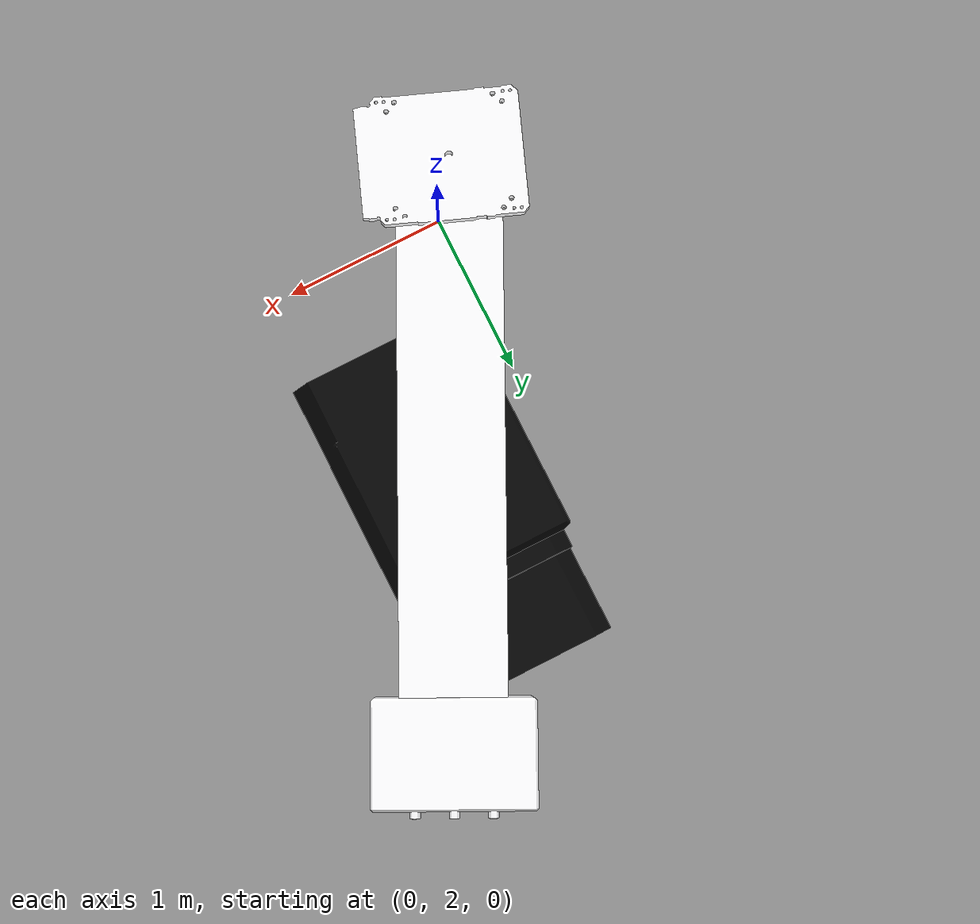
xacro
<?xml version="1.0"?>
<robot xmlns:xacro="http://www.ros.org/wiki/xacro">

  <link name="slider_link">
    <inertial>
      <origin
        xyz="0.75 1.0487 -3.6486"  rpy="0 0 0" />
      <mass value="1317.8" />
      <inertia ixx="353.39"  ixy="3.9338E-12"  ixz="3.5103E-13"
               iyy="420.06"  iyz="4.9967E-13"
               izz="170.54" />
      </inertial>
    <visual>
      <origin  xyz="0 0 0"     rpy="0 0 0" />
      <geometry>
        <mesh     filename="package://robot_slider_description/meshes/slider_link.STL" />
      </geometry>
      <material  name="">
        <color   rgba="0.019608 0.019608 0.019608 1" />
      </material>
    </visual>
    <collision>
      <origin  xyz="0 0 0"   rpy="0 0 0" />
      <geometry>
        <mesh   filename="package://robot_slider_description/meshes/slider_link.STL" />
      </geometry>
    </collision>
  </link>

  <link name="robot_stand">
    <inertial>
      <origin    xyz="0.0029912 -0.083551 0.56051"   rpy="0 0 0" />
      <mass value="300.98" />
      <inertia  ixx="65.942" ixy="-0.0012689" ixz="-0.044489"
                iyy="74.027" iyz="-0.19476"
                izz="15.95" />
      </inertial>
    <visual>
      <origin  xyz="0 0 0"  rpy="0 0 0" />
      <geometry>
        <mesh  filename="package://robot_slider_description/meshes/robot_stand.STL" />
      </geometry>
      <material name="">
        <color  rgba="0.99608 0.99608 1 1" />
      </material>
    </visual>
    <collision>
      <origin xyz="0 0 0"  rpy="0 0 0" />
      <geometry>
        <mesh  filename="package://robot_slider_description/meshes/robot_stand.STL" />
      </geometry>
    </collision>
  </link>

  <joint  name="robot_stand_slider_joint"   type="revolute">
        <origin   xyz="0.75 3.6486 2.7"  rpy="-1.5708 0 -0.46063" />
        <parent   link="slider_link" />
        <child    link="robot_stand" />
        <axis     xyz="0 1 0" />
        <limit    lower="-${pi/4}"   upper="${pi}"    effort="1" velocity="1" />
  </joint>

</robot>
